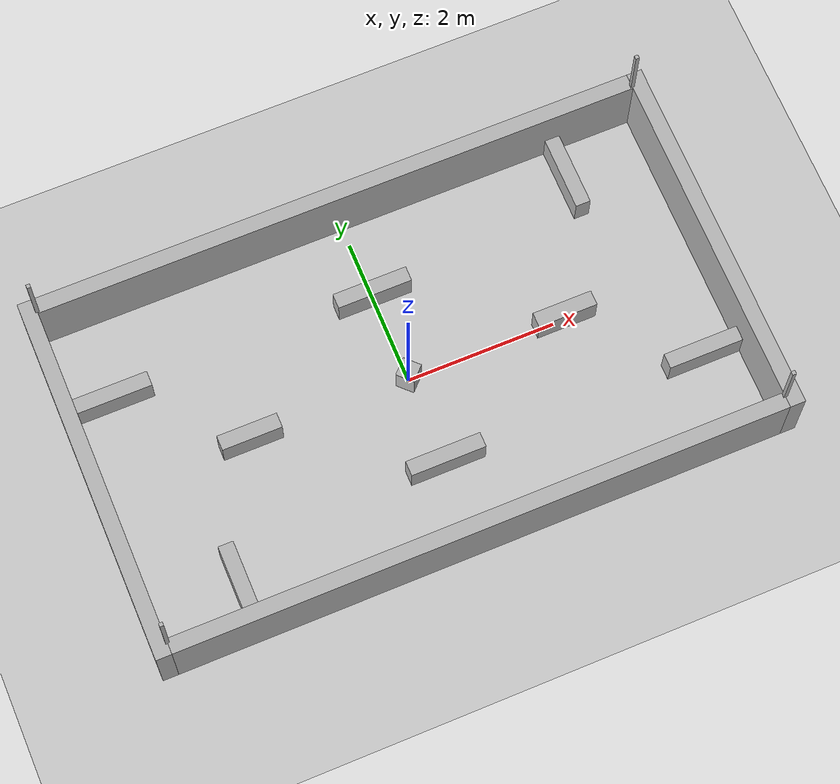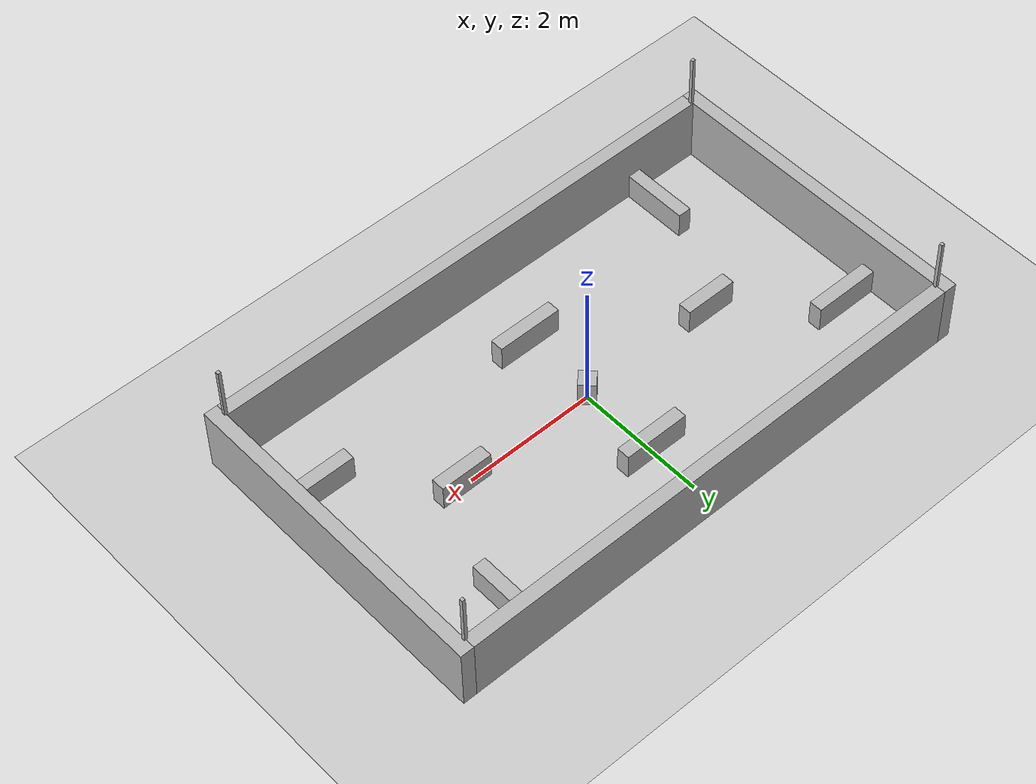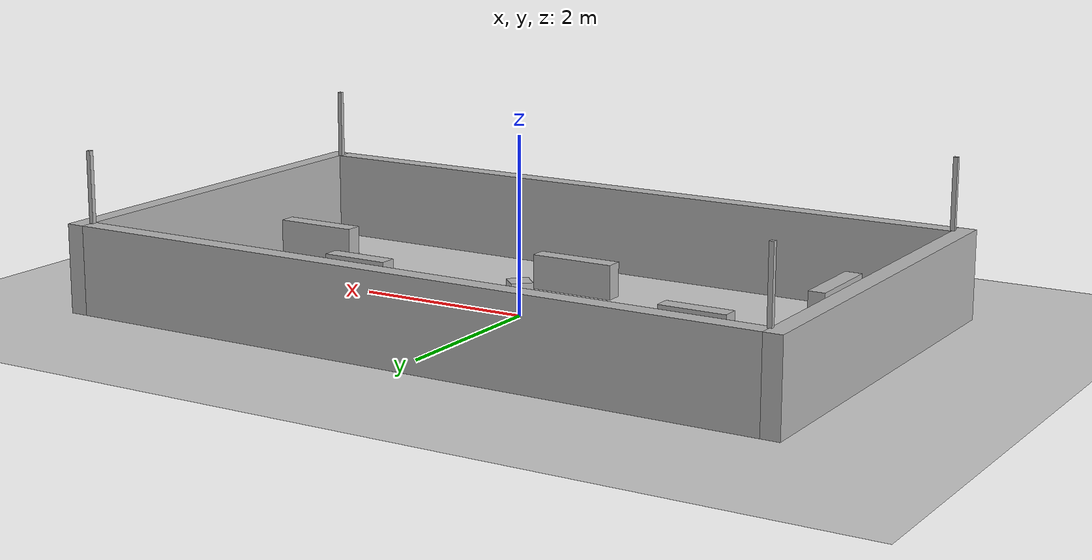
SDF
<sdf version="1.6">
 <world name="default">
  <light name="sun" type="directional">
   <pose>0 0 10 0 -0 0</pose>
   <diffuse>0.8 0.8 0.8 1</diffuse>
   <specular>0.2 0.2 0.2 1</specular>
   <attenuation>
    <range>1000</range>
    <constant>0.9</constant>
    <linear>0.01</linear>
    <quadratic>0.001</quadratic>
   </attenuation>
   <direction>-0.5 0.1 -0.9</direction>
  </light>
  <model name="ground_plane">
   <static>1</static>
   <link name="link">
    <collision name="collision">
     <geometry><plane><normal>0 0 1</normal><size>100 100</size></plane></geometry>
     <surface>
      <contact><collide_bitmask>65535</collide_bitmask></contact>
      <friction><ode><mu>100</mu><mu2>50</mu2></ode></friction>
     </surface>
    </collision>
    <visual name="visual">
     <cast_shadows>0</cast_shadows>
     <geometry><plane><normal>0 0 1</normal><size>100 100</size></plane></geometry>
     <material>
      <script><uri>file://media/materials/scripts/gazebo.material</uri><name>Gazebo/Grey</name></script>
     </material>
    </visual>
   </link>
  </model>
  <gravity>0 0 -9.8</gravity>
  <magnetic_field>6e-06 2.3e-05 -4.2e-05</magnetic_field>
  <atmosphere type="adiabatic"/>
  <physics name="default_physics" default="0" type="ode">
   <max_step_size>0.001</max_step_size>
   <real_time_factor>1</real_time_factor>
   <real_time_update_rate>1000</real_time_update_rate>
  </physics>
  <scene><ambient>0.4 0.4 0.4 1</ambient><background>0.7 0.7 0.7 1</background><shadows>1</shadows></scene>
  <spherical_coordinates>
   <surface_model>EARTH_WGS84</surface_model>
   <latitude_deg>0</latitude_deg>
   <longitude_deg>0</longitude_deg>
   <elevation>0</elevation>
   <heading_deg>0</heading_deg>
  </spherical_coordinates>
  <model name="icra_field">
   <static>true</static>
   <link name="Lfield">
    <inertial>
     <pose>0 0 -0.061111 0 -0 0</pose>
     <mass>0.018</mass>
     <inertia>
      <ixx>0.0627094</ixx>
      <ixy>-0.00216</ixy>
      <ixz>4.33681e-19</ixz>
      <iyy>0.170499</iyy>
      <iyz>0</iyz>
      <izz>0.212443</izz>
     </inertia>
    </inertial>
    <collision name="Lfield_fixed_joint_lump__A1_collision">
     <pose>0 1.205 -0.3 0 -0 0</pose>
     <geometry><box><size>1 0.2 0.4</size></box></geometry>
    </collision>
    <collision name="Lfield_fixed_joint_lump__A2_collision_1">
     <pose>0 -1.205 -0.3 0 -0 0</pose>
     <geometry><box><size>1 0.2 0.4</size></box></geometry>
    </collision>
    <collision name="Lfield_fixed_joint_lump__A3_collision_2">
     <pose>3.54 -1.14 -0.3 0 -0 0</pose>
     <geometry><box><size>1 0.2 0.4</size></box></geometry>
    </collision>
    <collision name="Lfield_fixed_joint_lump__A4_collision_3">
     <pose>2.94 1.74 -0.3 0 -0 1.5708</pose>
     <geometry><box><size>1 0.2 0.4</size></box></geometry>
    </collision>
    <collision name="Lfield_fixed_joint_lump__A5_collision_4">
     <pose>-3.54 1.14 -0.3 0 -0 0</pose>
     <geometry><box><size>1 0.2 0.4</size></box></geometry>
    </collision>
    <collision name="Lfield_fixed_joint_lump__A6_collision_5">
     <pose>-2.94 -1.74 -0.3 0 -0 1.5708</pose>
     <geometry><box><size>1 0.2 0.4</size></box></geometry>
    </collision>
    <collision name="Lfield_fixed_joint_lump__B1_collision_6">
     <pose>-2.14 0 -0.3 0 -0 0</pose>
     <geometry><box><size>0.8 0.2 0.4</size></box></geometry>
    </collision>
    <collision name="Lfield_fixed_joint_lump__B2_collision_7">
     <pose>2.14 0 -0.3 0 -0 0</pose>
     <geometry><box><size>0.8 0.2 0.4</size></box></geometry>
    </collision>
    <collision name="Lfield_fixed_joint_lump__D1_collision_8">
     <pose>4.04 -2.28 0.4 0 -0 0</pose>
     <geometry><box><size>0.05 0.05 1.8</size></box></geometry>
    </collision>
    <collision name="Lfield_fixed_joint_lump__D2_collision_9">
     <pose>4.04 2.28 0.4 0 -0 0</pose>
     <geometry><box><size>0.05 0.05 1.8</size></box></geometry>
    </collision>
    <collision name="Lfield_fixed_joint_lump__D3_collision_10">
     <pose>-4.04 2.28 0.4 0 -0 0</pose>
     <geometry><box><size>0.05 0.05 1.8</size></box></geometry>
    </collision>
    <collision name="Lfield_fixed_joint_lump__D4_collision_11">
     <pose>-4.04 -2.28 0.4 0 -0 0</pose>
     <geometry><box><size>0.05 0.05 1.8</size></box></geometry>
    </collision>
    <collision name="Lfield_fixed_joint_lump__W1_collision_12">
     <pose>4.1425 0 0 0 -0 0</pose>
     <geometry><box><size>0.205 4.89 1</size></box></geometry>
    </collision>
    <collision name="Lfield_fixed_joint_lump__W2_collision_13">
     <pose>-4.1425 0 0 0 -0 0</pose>
     <geometry><box><size>0.205 4.89 1</size></box></geometry>
    </collision>
    <collision name="Lfield_fixed_joint_lump__W3_collision_14">
     <pose>0 2.3425 0 0 -0 0</pose>
     <geometry><box><size>8.08 0.205 1</size></box></geometry>
    </collision>
    <collision name="Lfield_fixed_joint_lump__W4_collision_15">
     <pose>0 -2.3425 0 0 -0 0</pose>
     <geometry><box><size>8.08 0.205 1</size></box></geometry>
    </collision>
    <collision name="Lfield_fixed_joint_lump__center_collision_16">
     <pose>0 0 -0.3 0 -0 0.7854</pose>
     <geometry><box><size>0.25 0.25 0.4</size></box></geometry>
    </collision>
    <visual name="Lfield_fixed_joint_lump__A1_visual">
     <pose>0 1.205 -0.3 0 -0 0</pose>
     <geometry><box><size>1 0.2 0.4</size></box></geometry>
    </visual>
    <visual name="Lfield_fixed_joint_lump__A2_visual_1">
     <pose>0 -1.205 -0.3 0 -0 0</pose>
     <geometry><box><size>1 0.2 0.4</size></box></geometry>
    </visual>
    <visual name="Lfield_fixed_joint_lump__A3_visual_2">
     <pose>3.54 -1.14 -0.3 0 -0 0</pose>
     <geometry><box><size>1 0.2 0.4</size></box></geometry>
    </visual>
    <visual name="Lfield_fixed_joint_lump__A4_visual_3">
     <pose>2.94 1.74 -0.3 0 -0 1.5708</pose>
     <geometry><box><size>1 0.2 0.4</size></box></geometry>
    </visual>
    <visual name="Lfield_fixed_joint_lump__A5_visual_4">
     <pose>-3.54 1.14 -0.3 0 -0 0</pose>
     <geometry><box><size>1 0.2 0.4</size></box></geometry>
    </visual>
    <visual name="Lfield_fixed_joint_lump__A6_visual_5">
     <pose>-2.94 -1.74 -0.3 0 -0 1.5708</pose>
     <geometry><box><size>1 0.2 0.4</size></box></geometry>
    </visual>
    <visual name="Lfield_fixed_joint_lump__B1_visual_6">
     <pose>-2.14 0 -0.3 0 -0 0</pose>
     <geometry><box><size>0.8 0.2 0.4</size></box></geometry>
    </visual>
    <visual name="Lfield_fixed_joint_lump__B2_visual_7">
     <pose>2.14 0 -0.3 0 -0 0</pose>
     <geometry><box><size>0.8 0.2 0.4</size></box></geometry>
    </visual>
    <visual name="Lfield_fixed_joint_lump__D1_visual_8">
     <pose>4.04 -2.28 0.4 0 -0 0</pose>
     <geometry><box><size>0.05 0.05 1.8</size></box></geometry>
    </visual>
    <visual name="Lfield_fixed_joint_lump__D2_visual_9">
     <pose>4.04 2.28 0.4 0 -0 0</pose>
     <geometry><box><size>0.05 0.05 1.8</size></box></geometry>
    </visual>
    <visual name="Lfield_fixed_joint_lump__D3_visual_10">
     <pose>-4.04 2.28 0.4 0 -0 0</pose>
     <geometry><box><size>0.05 0.05 1.8</size></box></geometry>
    </visual>
    <visual name="Lfield_fixed_joint_lump__D4_visual_11">
     <pose>-4.04 -2.28 0.4 0 -0 0</pose>
     <geometry><box><size>0.05 0.05 1.8</size></box></geometry>
    </visual>
    <visual name="Lfield_fixed_joint_lump__W1_visual_12">
     <pose>4.1425 0 0 0 -0 0</pose>
     <geometry><box><size>0.205 4.89 1</size></box></geometry>
    </visual>
    <visual name="Lfield_fixed_joint_lump__W2_visual_13">
     <pose>-4.1425 0 0 0 -0 0</pose>
     <geometry><box><size>0.205 4.89 1</size></box></geometry>
    </visual>
    <visual name="Lfield_fixed_joint_lump__W3_visual_14">
     <pose>0 2.3425 0 0 -0 0</pose>
     <geometry><box><size>8.08 0.205 1</size></box></geometry>
    </visual>
    <visual name="Lfield_fixed_joint_lump__W4_visual_15">
     <pose>0 -2.3425 0 0 -0 0</pose>
     <geometry><box><size>8.08 0.205 1</size></box></geometry>
    </visual>
    <visual name="Lfield_fixed_joint_lump__center_visual_16">
     <pose>0 0 -0.3 0 -0 0.7854</pose>
     <geometry><box><size>0.25 0.25 0.4</size></box></geometry>
    </visual>
   </link>
   <pose>-0 1e-06 0.499994 -2e-06 0 0</pose>
  </model>
 </world>
</sdf>
